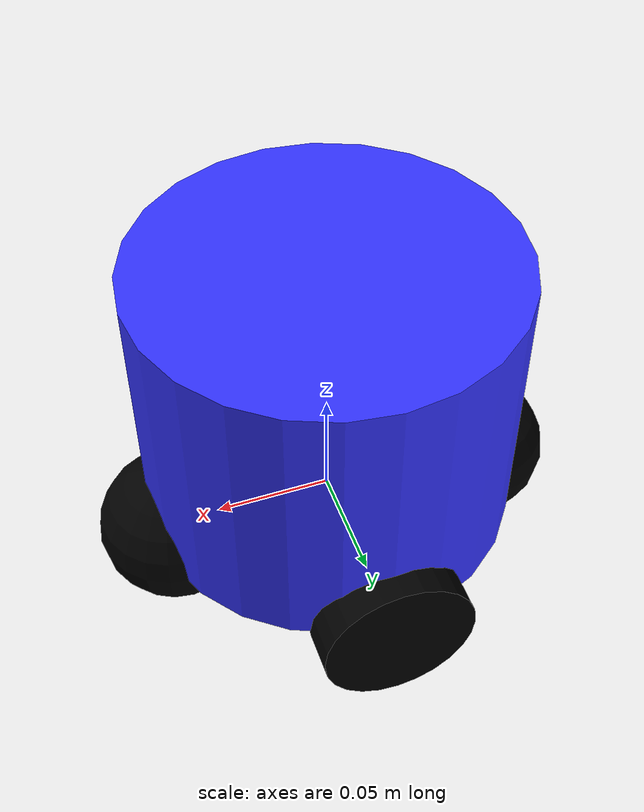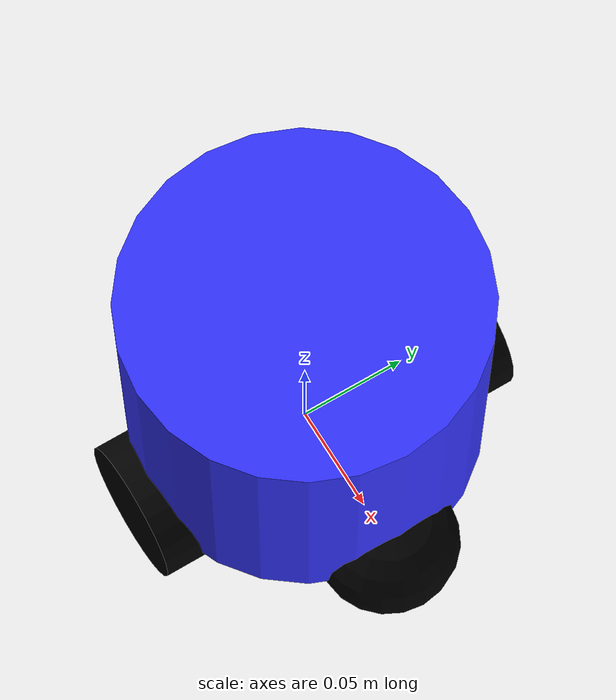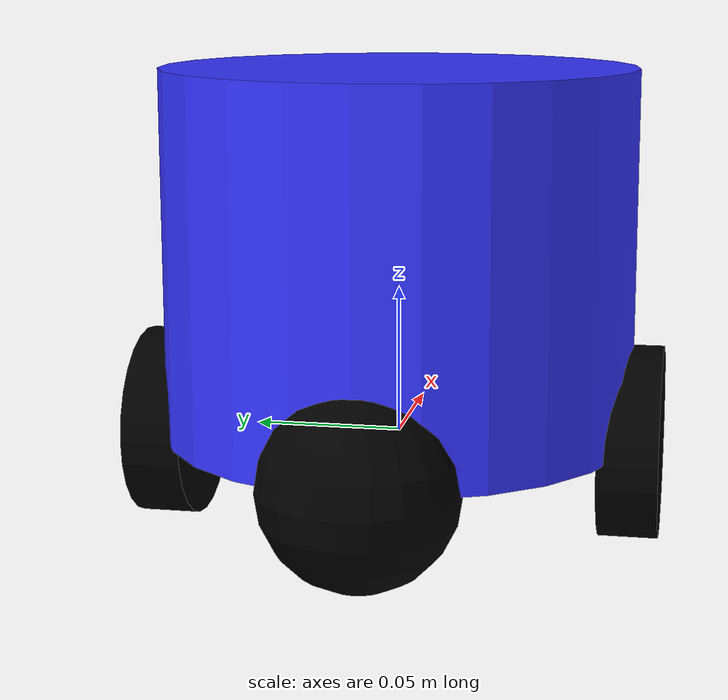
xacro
<?xml version="1.0"?>
<robot xmlns:xacro="http://www.ros.org/wiki/xacro">

    <xacro:include filename="inertial_macros.xacro" />

    <!-- Robot dimension variables -->
    <xacro:property name="chassis_radius" value="0.08"/>
    <xacro:property name="chassis_height" value="0.125"/>
    <xacro:property name="chassis_mass" value="2.0"/>

    <xacro:property name="wheel_radius" value="0.0325"/>
    <xacro:property name="wheel_thickness" value="0.02"/>
    <xacro:property name="wheel_mass" value="0.5"/>
    <xacro:property name="wheel_offset_x" value="0"/>
    <xacro:property name="wheel_offset_y" value="0.08"/>
    <xacro:property name="wheel_offset_z" value="0"/>

    <xacro:property name="caster_wheel_radius" value="0.0325"/>
    <xacro:property name="caster_wheel_mass" value="0.5"/>
    <xacro:property name="caster_wheel_offset_x" value="0.07"/>
    <xacro:property name="caster_wheel_offset_z" value="${wheel_offset_z - wheel_radius + caster_wheel_radius}"/>

    <!-- Material colors -->
    <material name="white">
        <color rgba="1 1 1 1"/>
    </material>
    <material name="black">
        <color rgba="0 0 0 1"/>
    </material>
    <material name="orange">
        <color rgba="1 0.3 0.1 1"/>
    </material>
    <material name="blue">
        <color rgba="0.2 0.2 1 1"/>
    </material>

    <link name="base_link"/>

    <joint name="base_footprint_joint" type="fixed">
        <parent link="base_link"/>
        <child link="base_footprint"/>
        <origin xyz="0 0 0" rpy="0 0 0"/>
    </joint>

    <link name="base_footprint"/>

    <joint name="chassis_joint" type="fixed">
        <parent link="base_link"/>
        <child link="chassis"/>
        <origin xyz="0 0 0"/>
    </joint>

    <link name="chassis">
        <visual>
            <origin xyz="0 0 ${chassis_height/2}"/>
            <geometry>
                <cylinder radius="${chassis_radius}" length="${chassis_height}"/>
            </geometry>
            <material name="blue"/>
        </visual>
        <collision>
            <origin xyz="0 0 ${chassis_height/2}"/>
            <geometry>
                <cylinder radius="${chassis_radius}" length="${chassis_height}"/>
            </geometry>
        </collision>
        <xacro:inertial_cylinder mass="${chassis_mass}" length="${chassis_height}" radius="${chassis_radius}">
            <origin xyz="0 0 ${chassis_height/2}" rpy="0 0 0"/>
        </xacro:inertial_cylinder>
    </link>

    <joint name="left_wheel_joint" type="continuous">
        <parent link="base_link"/>
        <child link="left_wheel"/>
        <origin xyz="${wheel_offset_x} ${wheel_offset_y} ${wheel_offset_z}" rpy="-${pi/2} 0 0"/>
        <axis xyz="0 0 1"/>
    </joint>

    <link name="left_wheel">
        <visual>
            <geometry>
                <cylinder radius="${wheel_radius}" length="${wheel_thickness}"/>
            </geometry>
            <material name="black"/>
        </visual>
        <collision>
            <geometry>
                <cylinder radius="${wheel_radius}" length="${wheel_thickness}"/>
            </geometry>
        </collision>
        <xacro:inertial_cylinder mass="${wheel_mass}" length="${wheel_thickness}" radius="${wheel_radius}">
            <origin xyz="0 0 0" rpy="0 0 0"/>
        </xacro:inertial_cylinder>
    </link>

    <joint name="right_wheel_joint" type="continuous">
        <parent link="base_link"/>
        <child link="right_wheel"/>
        <origin xyz="${wheel_offset_x} -${wheel_offset_y} ${wheel_offset_z}" rpy="${pi/2} 0 0"/>
        <axis xyz="0 0 -1"/>
    </joint>

    <link name="right_wheel">
        <visual>
            <geometry>
                <cylinder radius="${wheel_radius}" length="${wheel_thickness}"/>
            </geometry>
            <material name="black"/>
        </visual>
        <collision>
            <geometry>
                <cylinder radius="${wheel_radius}" length="${wheel_thickness}"/>
            </geometry>
        </collision>
        <xacro:inertial_cylinder mass="${wheel_mass}" length="${wheel_thickness}" radius="${wheel_radius}">
            <origin xyz="0 0 0" rpy="0 0 0"/>
        </xacro:inertial_cylinder>
    </link>

    <joint name="front_caster_wheel_joint" type="fixed">
        <parent link="chassis"/>
        <child link="front_caster_wheel"/>
        <origin xyz="${caster_wheel_offset_x} 0 ${caster_wheel_offset_z}"/>
    </joint>

    <link name="front_caster_wheel">
        <visual>
            <geometry>
                <sphere radius="${caster_wheel_radius}"/>
            </geometry>
            <material name="black"/>
        </visual>
        <collision>
            <geometry>
                <sphere radius="${caster_wheel_radius}"/>
            </geometry>
        </collision>
        <xacro:inertial_sphere mass="${caster_wheel_mass}" radius="${caster_wheel_radius}">
            <origin xyz="0 0 0" rpy="0 0 0"/>
        </xacro:inertial_sphere>
    </link>

    <gazebo reference="front_caster_wheel">
        <material>Gazebo/Black</material>
        <mu1 value="0.001"/>
        <mu2 value="0.001"/>
    </gazebo>

    <joint name="back_caster_wheel_joint" type="fixed">
        <parent link="chassis"/>
        <child link="back_caster_wheel"/>
        <origin xyz="-${caster_wheel_offset_x} 0 ${caster_wheel_offset_z}"/>
    </joint>

    <link name="back_caster_wheel">
        <visual>
            <geometry>
                <sphere radius="${caster_wheel_radius}"/>
            </geometry>
            <material name="black"/>
        </visual>
        <collision>
            <geometry>
                <sphere radius="${caster_wheel_radius}"/>
            </geometry>
        </collision>
        <xacro:inertial_sphere mass="${caster_wheel_mass}" radius="${caster_wheel_radius}">
            <origin xyz="0 0 0" rpy="0 0 0"/>
        </xacro:inertial_sphere>
    </link>

    <gazebo reference="back_caster_wheel">
        <material>Gazebo/Black</material>
        <mu1 value="0.001"/>
        <mu2 value="0.001"/>
    </gazebo>

</robot>
